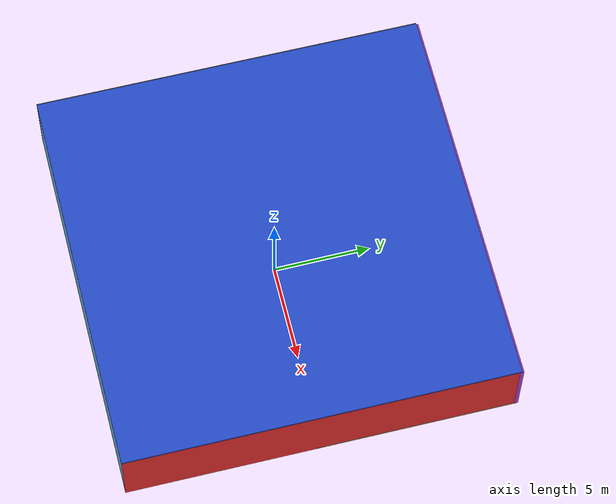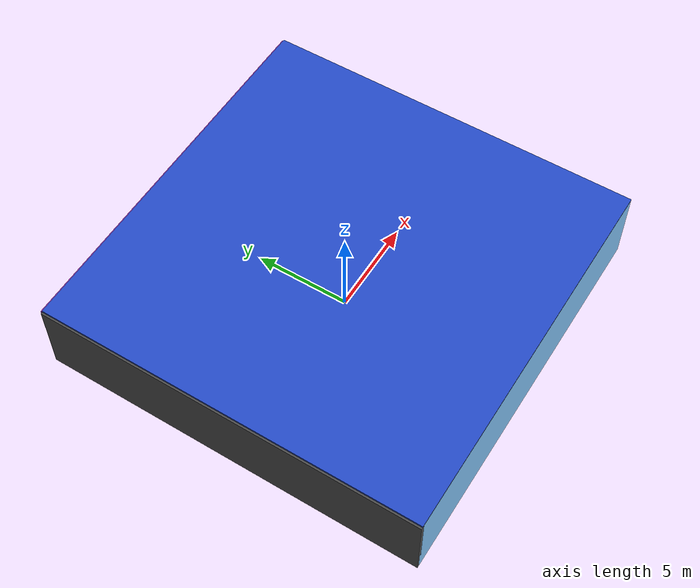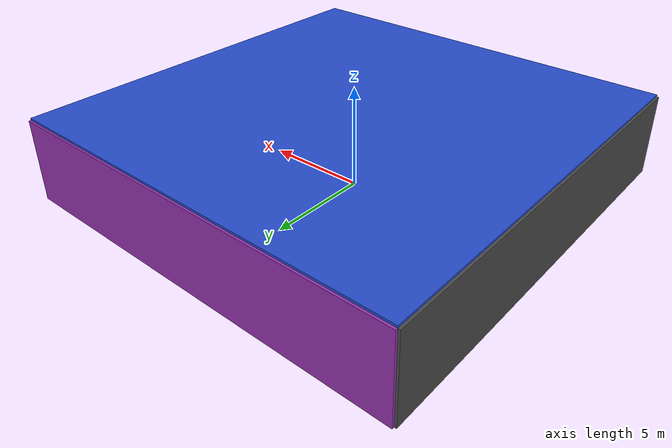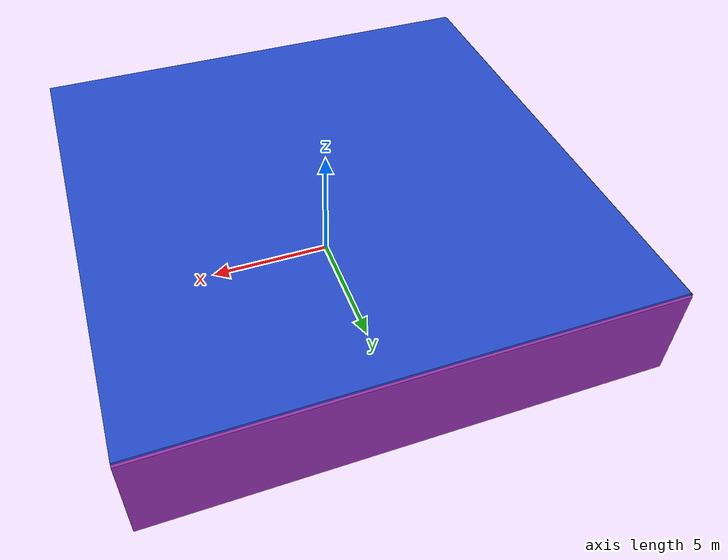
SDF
<sdf version="1.4">
 <world name="default">
  <physics type="ode">
   <max_step_size>0.001</max_step_size>
   <real_time_factor>1</real_time_factor>
   <real_time_update_rate>1000</real_time_update_rate>
   <gravity>0 0 -9.8</gravity>
  </physics>
  <scene><ambient>0.4 0.4 0.4 1</ambient><background>0.7 0.7 0.7 1</background><shadows>1</shadows></scene>
  <model name="Surrounding">
   <static>1</static>
   <link name="Ceiling">
    <collision name="Ceiling_Collision"><geometry><box><size>20 20 0.1</size></box></geometry></collision>
    <visual name="Ceiling_Visual">
     <geometry><box><size>20 20 0.1</size></box></geometry>
     <material>
      <script><uri>file://media/materials/scripts/gazebo.material</uri><name>Gazebo/Blue</name></script>
     </material>
    </visual>
    <pose>0 0 4.05 0 0 0</pose>
   </link>
   <link name="Wall_South">
    <collision name="Wall_South_Collision">
     <geometry><box><size>20 0 4</size></box></geometry>
     <pose>0 0 2 0 -0 0</pose>
    </collision>
    <visual name="Wall_South_Visual">
     <pose>0 0 2 0 -0 0</pose>
     <geometry><box><size>20 0 4</size></box></geometry>
     <material>
      <script><uri>file://media/materials/scripts/gazebo.material</uri><name>Gazebo/SkyBlue</name></script>
     </material>
    </visual>
    <velocity_decay><linear>0</linear><angular>0</angular></velocity_decay>
    <pose>0 -10 0 0 -0 0</pose>
   </link>
   <link name="Wall_East">
    <collision name="Wall_21_Collision">
     <geometry><box><size>20 0 4</size></box></geometry>
     <pose>0 0 2 0 -0 0</pose>
    </collision>
    <visual name="Wall_21_Visual">
     <pose>0 0 2 0 -0 0</pose>
     <geometry><box><size>20 0 4</size></box></geometry>
     <material>
      <script><uri>file://media/materials/scripts/gazebo.material</uri><name>Gazebo/RedBright</name></script>
     </material>
    </visual>
    <velocity_decay><linear>0</linear><angular>0</angular></velocity_decay>
    <pose>10 0 0 0 -0 1.5708</pose>
   </link>
   <link name="Wall_North">
    <collision name="Wall_22_Collision">
     <geometry><box><size>20 0.2 4</size></box></geometry>
     <pose>0 0 2 0 -0 0</pose>
    </collision>
    <visual name="Wall_22_Visual">
     <pose>0 0 2 0 -0 0</pose>
     <geometry><box><size>20 0.2 4</size></box></geometry>
     <material>
      <script><uri>file://media/materials/scripts/gazebo.material</uri><name>Gazebo/PurpleGlow</name></script>
     </material>
    </visual>
    <velocity_decay><linear>0</linear><angular>0</angular></velocity_decay>
    <pose>0 10 0 0 -0 0</pose>
   </link>
   <link name="Wall_West">
    <collision name="Wall_23_Collision">
     <geometry><box><size>20 0.2 4</size></box></geometry>
     <pose>0 0 2 0 -0 0</pose>
    </collision>
    <visual name="Wall_23_Visual">
     <pose>0 0 2 0 -0 0</pose>
     <geometry><box><size>20 0.2 4</size></box></geometry>
     <material>
      <script><uri>file://media/materials/scripts/gazebo.material</uri><name>Gazebo/DarkGrey</name></script>
     </material>
    </visual>
    <velocity_decay><linear>0</linear><angular>0</angular></velocity_decay>
    <pose>-10 0 0 0 0 -1.5708</pose>
   </link>
   <link name="Ground_link">
    <collision name="collision">
     <pose>0 0 .05 0 -0 0</pose>
     <geometry><box><size>20 20 0.1</size></box></geometry>
    </collision>
    <visual name="visual">
     <pose>0 0 .05 0 -0 0</pose>
     <geometry><box><size>20 20 0.1</size></box></geometry>
     <material>
      <script><uri>file://media/materials/scripts/gazebo.material</uri><name>Gazebo/Wood</name></script>
     </material>
    </visual>
   </link>
   <static>1</static>
  </model>
  <spherical_coordinates>
   <surface_model>EARTH_WGS84</surface_model>
   <latitude_deg>0</latitude_deg>
   <longitude_deg>0</longitude_deg>
   <elevation>0</elevation>
   <heading_deg>0</heading_deg>
  </spherical_coordinates>
  <light name="lightball_0" type="diffuse">
   <diffuse>0.8 0.8 0.8 1</diffuse>
   <specular>0.2 0.2 0.2 1</specular>
   <attenuation>
    <range>100</range>
    <constant>0.7</constant>
    <linear>0.01</linear>
    <quadratic>0.001</quadratic>
   </attenuation>
   <direction>-0.5 0.1 -0.9</direction>
   <pose>5.8984813395 1.73260186354 2.26129928025 0 0 0</pose>
  </light>
  <light name="lightball_1" type="diffuse">
   <diffuse>0.8 0.8 0.8 1</diffuse>
   <specular>0.2 0.2 0.2 1</specular>
   <attenuation>
    <range>100</range>
    <constant>0.7</constant>
    <linear>0.01</linear>
    <quadratic>0.001</quadratic>
   </attenuation>
   <direction>-0.5 0.1 -0.9</direction>
   <pose>-8.87114897987 3.54520814611 2.80570133554 0 0 0</pose>
  </light>
  <light name="lightball_2" type="diffuse">
   <diffuse>0.8 0.8 0.8 1</diffuse>
   <specular>0.2 0.2 0.2 1</specular>
   <attenuation>
    <range>100</range>
    <constant>0.7</constant>
    <linear>0.01</linear>
    <quadratic>0.001</quadratic>
   </attenuation>
   <direction>-0.5 0.1 -0.9</direction>
   <pose>5.73538414988 7.47797832804 1.77570072839 0 0 0</pose>
  </light>
  <light name="lightball_3" type="diffuse">
   <diffuse>0.8 0.8 0.8 1</diffuse>
   <specular>0.2 0.2 0.2 1</specular>
   <attenuation>
    <range>100</range>
    <constant>0.7</constant>
    <linear>0.01</linear>
    <quadratic>0.001</quadratic>
   </attenuation>
   <direction>-0.5 0.1 -0.9</direction>
   <pose>0.575774305105 -6.63026810447 2.38974054165 0 0 0</pose>
  </light>
  <light name="lightball_4" type="diffuse">
   <diffuse>0.8 0.8 0.8 1</diffuse>
   <specular>0.2 0.2 0.2 1</specular>
   <attenuation>
    <range>100</range>
    <constant>0.7</constant>
    <linear>0.01</linear>
    <quadratic>0.001</quadratic>
   </attenuation>
   <direction>-0.5 0.1 -0.9</direction>
   <pose>4.85957593522 8.82345905215 3.19339103135 0 0 0</pose>
  </light>
  <light name="lightball_5" type="diffuse">
   <diffuse>0.8 0.8 0.8 1</diffuse>
   <specular>0.2 0.2 0.2 1</specular>
   <attenuation>
    <range>100</range>
    <constant>0.7</constant>
    <linear>0.01</linear>
    <quadratic>0.001</quadratic>
   </attenuation>
   <direction>-0.5 0.1 -0.9</direction>
   <pose>-6.26572283695 2.82558937122 3.0677412072 0 0 0</pose>
  </light>
  <light name="lightball_6" type="diffuse">
   <diffuse>0.8 0.8 0.8 1</diffuse>
   <specular>0.2 0.2 0.2 1</specular>
   <attenuation>
    <range>100</range>
    <constant>0.7</constant>
    <linear>0.01</linear>
    <quadratic>0.001</quadratic>
   </attenuation>
   <direction>-0.5 0.1 -0.9</direction>
   <pose>-9.41942153524 7.87523243407 2.85845104284 0 0 0</pose>
  </light>
  <light name="lightball_7" type="diffuse">
   <diffuse>0.8 0.8 0.8 1</diffuse>
   <specular>0.2 0.2 0.2 1</specular>
   <attenuation>
    <range>100</range>
    <constant>0.7</constant>
    <linear>0.01</linear>
    <quadratic>0.001</quadratic>
   </attenuation>
   <direction>-0.5 0.1 -0.9</direction>
   <pose>9.54536112251 9.24319289205 0.816914258641 0 0 0</pose>
  </light>
  <light name="lightball_8" type="diffuse">
   <diffuse>0.8 0.8 0.8 1</diffuse>
   <specular>0.2 0.2 0.2 1</specular>
   <attenuation>
    <range>100</range>
    <constant>0.7</constant>
    <linear>0.01</linear>
    <quadratic>0.001</quadratic>
   </attenuation>
   <direction>-0.5 0.1 -0.9</direction>
   <pose>7.33480081255 -6.01911328329 1.66878219008 0 0 0</pose>
  </light>
  <light name="lightball_9" type="diffuse">
   <diffuse>0.8 0.8 0.8 1</diffuse>
   <specular>0.2 0.2 0.2 1</specular>
   <attenuation>
    <range>100</range>
    <constant>0.7</constant>
    <linear>0.01</linear>
    <quadratic>0.001</quadratic>
   </attenuation>
   <direction>-0.5 0.1 -0.9</direction>
   <pose>3.78644951803 -7.91987957916 3.39847015722 0 0 0</pose>
  </light>
  <light name="lightball_10" type="diffuse">
   <diffuse>0.8 0.8 0.8 1</diffuse>
   <specular>0.2 0.2 0.2 1</specular>
   <attenuation>
    <range>100</range>
    <constant>0.7</constant>
    <linear>0.01</linear>
    <quadratic>0.001</quadratic>
   </attenuation>
   <direction>-0.5 0.1 -0.9</direction>
   <pose>5.23879466051 6.41574318789 1.56432019495 0 0 0</pose>
  </light>
  <include><uri>model://cabinet</uri><pose>-6.65156776695 -4.99422591154 0 0 0 1.3266996807</pose></include>
  <include><uri>model://cabinet</uri><pose>-6.45780488702 -2.6623476392 0 0 0 2.88848210841</pose></include>
  <include>
   <uri>model://textured_shapes</uri>
   <pose>-3.31887632458 5.64228494506 0 0 0 1.81882586451</pose>
  </include>
  <include>
   <uri>model://textured_shapes</uri>
   <pose>-0.884913812772 -7.09625041234 0 0 0 0.627861377637</pose>
  </include>
  <include>
   <uri>model://robocup_3Dsim_goal</uri>
   <pose>-0.360498572323 4.85545081527 0 0 0 2.63695770979</pose>
  </include>
  <include><uri>model://table</uri><pose>1.90537106011 1.55613279875 0 0 0 0.946752542606</pose></include>
  <include><uri>model://table</uri><pose>5.00975959546 -1.55976686466 0 0 0 0.887090678014</pose></include>
 </world>
</sdf>

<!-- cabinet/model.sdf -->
<sdf version="1.5">
  <model name="cabinet">
    <static>true</static>
    <link name="cabinet_bottom_plate">
      <inertial>
        <pose>0 0 -1 0 0 0</pose>
        <inertia>
          <ixx>2.050000</ixx>
          <ixy>0</ixy>
          <ixz>0</ixz>
          <iyy>2.050000</iyy>
          <iyz>0</iyz>
          <izz>2.050000</izz>
        </inertia>
        <mass>25.000000</mass>
      </inertial>
      <collision name="cabinet_bottom_plate_geom">
        <pose>0 0 0.010000 0 0 0</pose>
        <geometry>
          <box>
            <size>0.450000 0.450000 0.020000</size>
          </box>
        </geometry>
      </collision>
      <visual name="cabinet_bottom_plate_geom_visual">
        <pose>0 0 0.010000 0 0 0</pose>
        <geometry>
          <box>
            <size>0.450000 0.450000 0.020000</size>
          </box>
        </geometry>
        <material>
          <script>
            <uri>model://media/materials/scripts/gazebo.material</uri>
            <name>Gazebo/Wood</name>
          </script>
        </material>
      </visual>
      <collision name="cabinet_bottom_plate_geom_cabinet_back_plate">
        <pose>0.235000 0 0.510000 0 0 0</pose>
        <geometry>
          <box>
            <size>0.020000 0.450000 1.020000</size>
          </box>
        </geometry>
      </collision>
      <visual name="cabinet_bottom_plate_geom_cabinet_back_plate_visual">
        <pose>0.235000 0 0.510000 0 0 0</pose>
        <geometry>
          <box>
            <size>0.020000 0.450000 1.020000</size>
          </box>
        </geometry>
        <material>
          <script>
            <uri>model://media/materials/scripts/gazebo.material</uri>
            <name>Gazebo/Wood</name>
          </script>
        </material>
      </visual>
      <collision name="cabinet_bottom_plate_geom_cabinet_left_plate">
        <pose>0 0.235000 0.510000 0 0 0</pose>
        <geometry>
          <box>
            <size>0.450000 0.020000 1.020000</size>
          </box>
        </geometry>
      </collision>
      <visual name="cabinet_bottom_plate_geom_cabinet_left_plate_visual">
        <pose>0 0.235000 0.510000 0 0 0</pose>
        <geometry>
          <box>
            <size>0.450000 0.020000 1.020000</size>
          </box>
        </geometry>
        <material>
          <script>
            <uri>model://media/materials/scripts/gazebo.material</uri>
            <name>Gazebo/Wood</name>
          </script>
        </material>
      </visual>
      <collision name="cabinet_bottom_plate_geom_cabinet_middle_plate">
        <pose>0 0 0.510000 0 0 0</pose>
        <geometry>
          <box>
            <size>0.450000 0.450000 0.020000</size>
          </box>
        </geometry>
      </collision>
      <visual name="cabinet_bottom_plate_geom_cabinet_middle_plate_visual">
        <pose>0 0 0.510000 0 0 0</pose>
        <geometry>
          <box>
            <size>0.450000 0.450000 0.020000</size>
          </box>
        </geometry>
        <material>
          <script>
            <uri>model://media/materials/scripts/gazebo.material</uri>
            <name>Gazebo/Wood</name>
          </script>
        </material>
      </visual>
      <collision name="cabinet_bottom_plate_geom_cabinet_right_plate">
        <pose>0 -0.235000 0.510000 0 0 0</pose>
        <geometry>
          <box>
            <size>0.450000 0.020000 1.020000</size>
          </box>
        </geometry>
      </collision>
      <visual name="cabinet_bottom_plate_geom_cabinet_right_plate_visual">
        <pose>0 -0.235000 0.510000 0 0 0</pose>
        <geometry>
          <box>
            <size>0.450000 0.020000 1.020000</size>
          </box>
        </geometry>
        <material>
          <script>
            <uri>model://media/materials/scripts/gazebo.material</uri>
            <name>Gazebo/Wood</name>
          </script>
        </material>
      </visual>
      <collision name="cabinet_bottom_plate_geom_cabinet_top_plate">
        <pose>0 0 1.010000 0 0 0</pose>
        <geometry>
          <box>
            <size>0.450000 0.450000 0.020000</size>
          </box>
        </geometry>
      </collision>
      <visual name="cabinet_bottom_plate_geom_cabinet_top_plate_visual">
        <pose>0 0 1.010000 0 0 0</pose>
        <geometry>
          <box>
            <size>0.450000 0.450000 0.020000</size>
          </box>
        </geometry>
        <material>
          <script>
            <uri>model://media/materials/scripts/gazebo.material</uri>
            <name>Gazebo/Wood</name>
          </script>
        </material>
      </visual>
    </link>
  </model>
</sdf>

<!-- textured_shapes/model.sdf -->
<sdf version="1.6">
  <model name="textured_shapes">
    <pose>0 0 0.5 0 0 0</pose>
    <link name="box">
      <pose>0 -1.5 0 0 0 0</pose>
      <collision name="collision">
        <geometry>
          <box>
            <size>1 1 1</size>
          </box>
        </geometry>
      </collision>
      <visual name="visual">
        <geometry>
          <box>
            <size>1 1 1</size>
          </box>
        </geometry>
        <material>
          <script>
            <uri>model://../model_source/models/textured_shapes/materials/scripts</uri>
            <uri>model://../model_source/models/textured_shapes/materials/textures</uri>
            <name>TexturedShape/Squares</name>
          </script>
        </material>
      </visual>
    </link>
    <link name="sphere">
      <collision name="collision">
        <geometry>
          <sphere>
            <radius>0.5</radius>
          </sphere>
        </geometry>
      </collision>
      <visual name="visual">
        <geometry>
          <sphere>
            <radius>0.5</radius>
          </sphere>
        </geometry>
        <material>
          <script>
            <uri>model://../model_source/models/textured_shapes/materials/scripts</uri>
            <uri>model://../model_source/models/textured_shapes/materials/textures</uri>
            <name>TexturedShape/Squares</name>
          </script>
        </material>
      </visual>
    </link>
    <link name="cylinder">
      <pose>0 1.5 0 0 0 0</pose>
      <collision name="collision">
        <geometry>
          <cylinder>
            <radius>0.5</radius>
            <length>1</length>
          </cylinder>
        </geometry>
      </collision>
      <visual name="visual">
        <geometry>
          <cylinder>
            <radius>0.5</radius>
            <length>1</length>
          </cylinder>
        </geometry>
        <material>
          <script>
            <uri>model://../model_source/models/textured_shapes/materials/scripts</uri>
            <uri>model://../model_source/models/textured_shapes/materials/textures</uri>
            <name>TexturedShape/Squares</name>
          </script>
        </material>
      </visual>
    </link>
  </model>
</sdf>

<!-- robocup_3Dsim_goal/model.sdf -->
<sdf version="1.5">
  <model name="robocup_3d_goal">
    <static>true</static>
    <link name="left_post">
      <pose>0 1.05 0.45 0 0 0</pose>
      <collision name="collision">
        <geometry>
          <cylinder>
            <radius>0.05</radius>
            <length>0.9</length>
          </cylinder>
        </geometry>
      </collision>
      <visual name="visual">
        <geometry>
          <cylinder>
            <radius>0.05</radius>
            <length>0.9</length>
          </cylinder>
        </geometry>
        <material>
          <script>
            <uri>file://media/materials/scripts/gazebo.material</uri>
            <name>Gazebo/ZincYellow</name>
          </script>
        </material>
      </visual>
    </link>
    <link name="left_support_horiz_lower">
      <pose>0.30 1.05 0.01 0 0 0</pose>
      <collision name="collision">
        <geometry>
          <box>
            <size>0.50 0.02 0.02</size>
          </box>
        </geometry>
      </collision>
      <visual name="visual">
        <geometry>
          <box>
            <size>0.50 0.02 0.02</size>
          </box>
        </geometry>
        <material>
          <script>
            <uri>file://media/materials/scripts/gazebo.material</uri>
            <name>Gazebo/White</name>
          </script>
        </material>
      </visual>
    </link>
    <link name="left_support_horiz_upper">
      <pose>0.30 1.05 0.79 0 0 0</pose>
      <collision name="collision">
        <geometry>
          <box>
            <size>0.50 0.02 0.02</size>
          </box>
        </geometry>
      </collision>
      <visual name="visual">
        <geometry>
          <box>
            <size>0.50 0.02 0.02</size>
          </box>
        </geometry>
        <material>
          <script>
            <uri>file://media/materials/scripts/gazebo.material</uri>
            <name>Gazebo/White</name>
          </script>
        </material>
      </visual>
    </link>
    <link name="left_support_vertical">
      <pose>0.56 1.05 0.4 0 1.5708 0</pose>
      <collision name="collision">
        <geometry>
          <box>
            <size>0.80 0.02 0.02</size>
          </box>
        </geometry>
      </collision>
      <visual name="visual">
        <geometry>
          <box>
            <size>0.80 0.02 0.02</size>
          </box>
        </geometry>
        <material>
          <script>
            <uri>file://media/materials/scripts/gazebo.material</uri>
            <name>Gazebo/White</name>
          </script>
        </material>
      </visual>
    </link>
    <link name="right_support_horiz_lower">
      <pose>0.30 -1.05 0.01 0 0 0</pose>
      <collision name="collision">
        <geometry>
          <box>
            <size>0.50 0.02 0.02</size>
          </box>
        </geometry>
      </collision>
      <visual name="visual">
        <geometry>
          <box>
            <size>0.50 0.02 0.02</size>
          </box>
        </geometry>
        <material>
          <script>
            <uri>file://media/materials/scripts/gazebo.material</uri>
            <name>Gazebo/White</name>
          </script>
        </material>
      </visual>
    </link>
    <link name="right_support_horiz_upper">
      <pose>0.30 -1.05 0.79 0 0 0</pose>
      <collision name="collision">
        <geometry>
          <box>
            <size>0.50 0.02 0.02</size>
          </box>
        </geometry>
      </collision>
      <visual name="visual">
        <geometry>
          <box>
            <size>0.50 0.02 0.02</size>
          </box>
        </geometry>
        <material>
          <script>
            <uri>file://media/materials/scripts/gazebo.material</uri>
            <name>Gazebo/White</name>
          </script>
        </material>
      </visual>
    </link>
    <link name="right_support_vertical">
      <pose>0.56 -1.05 0.4 0 1.5708 0</pose>
      <collision name="collision">
        <geometry>
          <box>
            <size>0.80 0.02 0.02</size>
          </box>
        </geometry>
      </collision>
      <visual name="visual">
        <geometry>
          <box>
            <size>0.80 0.02 0.02</size>
          </box>
        </geometry>
        <material>
          <script>
            <uri>file://media/materials/scripts/gazebo.material</uri>
            <name>Gazebo/White</name>
          </script>
        </material>
      </visual>
    </link>
    <link name="center_support_horiz_lower">
      <pose>0.56 0 0.01 0 1.5708 0</pose>
      <collision name="collision">
        <geometry>
          <box>
            <size>0.02 2.08 0.02</size>
          </box>
        </geometry>
      </collision>
      <visual name="visual">
        <geometry>
          <box>
            <size>0.02 2.08 0.02</size>
          </box>
        </geometry>
        <material>
          <script>
            <uri>file://media/materials/scripts/gazebo.material</uri>
            <name>Gazebo/White</name>
          </script>
        </material>
      </visual>
    </link>
    <link name="center_support_horiz_upper">
      <pose>0.56 0 0.79 0 1.5708 0</pose>
      <collision name="collision">
        <geometry>
          <box>
            <size>0.02 2.08 0.02</size>
          </box>
        </geometry>
      </collision>
      <visual name="visual">
        <geometry>
          <box>
            <size>0.02 2.08 0.02</size>
          </box>
        </geometry>
        <material>
          <script>
            <uri>file://media/materials/scripts/gazebo.material</uri>
            <name>Gazebo/White</name>
          </script>
        </material>
      </visual>
    </link>
    <link name="right_post">
      <pose>0 -1.05 0.45 0 0 0</pose>
      <collision name="collision">
        <geometry>
          <cylinder>
            <radius>0.05</radius>
            <length>0.9</length>
          </cylinder>
        </geometry>
      </collision>
      <visual name="visual">
        <geometry>
          <cylinder>
            <radius>0.05</radius>
            <length>0.9</length>
          </cylinder>
        </geometry>
        <material>
          <script>
            <uri>file://media/materials/scripts/gazebo.material</uri>
            <name>Gazebo/ZincYellow</name>
          </script>
        </material>
      </visual>
    </link>
    <link name="crossbar">
      <pose>0 0 0.85 1.57 1.57 0</pose>
      <collision name="collision">
        <geometry>
          <cylinder>
            <radius>0.05</radius>
            <length>2.0</length>
          </cylinder>
        </geometry>
      </collision>
      <visual name="visual">
        <geometry>
          <cylinder>
            <radius>0.05</radius>
            <length>2.0</length>
          </cylinder>
        </geometry>
        <material>
          <script>
            <uri>file://media/materials/scripts/gazebo.material</uri>
            <name>Gazebo/ZincYellow</name>
          </script>
        </material>
      </visual>
    </link>
    <link name="center_net">
      <pose>0.56 0 0.40 0 0 0</pose>
      <collision name="collision">
        <geometry>
          <box>
            <size>0.01 2.1 0.80</size>
          </box>
        </geometry>
      </collision>
      <visual name="visual">
        <geometry>
          <box>
            <size>0.01 2.1 0.80</size>
          </box>
        </geometry>
        <material>
          <script>
            <uri>model://../model_source/models/robocup09_spl_field/materials/scripts/</uri>
            <uri>model://../model_source/models/robocup09_spl_field/materials/textures/</uri>
            <name>RoboCup/Net</name>
          </script>
        </material>
      </visual>
    </link>
    <link name="left_net">
      <pose>0.30 1.05 0.40 0 0 0</pose>
      <collision name="collision">
        <geometry>
          <box>
            <size>0.50 0.01 0.76</size>
          </box>
        </geometry>
      </collision>
      <visual name="visual">
        <geometry>
          <box>
            <size>0.50 0.01 0.76</size>
          </box>
        </geometry>
        <material>
          <script>
            <uri>model://../model_source/models/robocup09_spl_field/materials/scripts/</uri>
            <uri>model://../model_source/models/robocup09_spl_field/materials/textures/</uri>
            <name>RoboCup/Net</name>
          </script>
        </material>
      </visual>
    </link>
    <link name="right_net">
      <pose>0.30 -1.05 0.40 0 0 0</pose>
      <collision name="collision">
        <geometry>
          <box>
            <size>0.50 0.01 0.76</size>
          </box>
        </geometry>
      </collision>
      <visual name="visual">
        <geometry>
          <box>
            <size>0.50 0.01 0.76</size>
          </box>
        </geometry>
        <material>
          <script>
            <uri>model://../model_source/models/robocup09_spl_field/materials/scripts/</uri>
            <uri>model://../model_source/models/robocup09_spl_field/materials/textures/</uri>
            <name>RoboCup/Net</name>
          </script>
        </material>
      </visual>
    </link>
  </model>
</sdf>

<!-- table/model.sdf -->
<sdf version="1.5">
  <model name="table">
    <static>true</static>
    <link name="link">
      <collision name="surface">
        <pose>0 0 1.0 0 0 0</pose>
        <geometry>
          <box>
            <size>1.5 0.8 0.03</size>
          </box>
        </geometry>
        <surface>
          <friction>
            <ode>
              <mu>0.6</mu>
              <mu2>0.6</mu2>
            </ode>
          </friction>
        </surface>
      </collision>
      <visual name="visual1">
        <pose>0 0 1.0 0 0 0</pose>
        <geometry>
          <box>
            <size>1.5 0.8 0.03</size>
          </box>
        </geometry>
        <material>
          <script>
            <uri>model://media/materials/scripts/gazebo.material</uri>
            <name>Gazebo/Wood</name>
          </script>
        </material>
      </visual>
      <collision name="front_left_leg">
        <pose>0.68 0.38 0.5 0 0 0</pose>
        <geometry>
          <cylinder>
            <radius>0.02</radius>
            <length>1.0</length>
          </cylinder>
        </geometry>
      </collision>
      <visual name="front_left_leg">
        <pose>0.68 0.38 0.5 0 0 0</pose>
        <geometry>
          <cylinder>
            <radius>0.02</radius>
            <length>1.0</length>
          </cylinder>
        </geometry>
        <material>
          <script>
            <uri>model://media/materials/scripts/gazebo.material</uri>
            <name>Gazebo/Grey</name>
          </script>
        </material>
      </visual>
      <collision name="front_right_leg">
        <pose>0.68 -0.38 0.5 0 0 0</pose>
        <geometry>
          <cylinder>
            <radius>0.02</radius>
            <length>1.0</length>
          </cylinder>
        </geometry>
      </collision>
      <visual name="front_right_leg">
        <pose>0.68 -0.38 0.5 0 0 0</pose>
        <geometry>
          <cylinder>
            <radius>0.02</radius>
            <length>1.0</length>
          </cylinder>
        </geometry>
        <material>
          <script>
            <uri>model://media/materials/scripts/gazebo.material</uri>
            <name>Gazebo/Grey</name>
          </script>
        </material>
      </visual>
      <collision name="back_right_leg">
        <pose>-0.68 -0.38 0.5 0 0 0</pose>
        <geometry>
          <cylinder>
            <radius>0.02</radius>
            <length>1.0</length>
          </cylinder>
        </geometry>
      </collision>
      <visual name="back_right_leg">
        <pose>-0.68 -0.38 0.5 0 0 0</pose>
        <geometry>
          <cylinder>
            <radius>0.02</radius>
            <length>1.0</length>
          </cylinder>
        </geometry>
        <material>
          <script>
            <uri>model://media/materials/scripts/gazebo.material</uri>
            <name>Gazebo/Grey</name>
          </script>
        </material>
      </visual>
      <collision name="back_left_leg">
        <pose>-0.68 0.38 0.5 0 0 0</pose>
        <geometry>
          <cylinder>
            <radius>0.02</radius>
            <length>1.0</length>
          </cylinder>
        </geometry>
      </collision>
      <visual name="back_left_leg">
        <pose>-0.68 0.38 0.5 0 0 0</pose>
        <geometry>
          <cylinder>
            <radius>0.02</radius>
            <length>1.0</length>
          </cylinder>
        </geometry>
        <material>
          <script>
            <uri>model://media/materials/scripts/gazebo.material</uri>
            <name>Gazebo/Grey</name>
          </script>
        </material>
      </visual>
    </link>
  </model>
</sdf>
